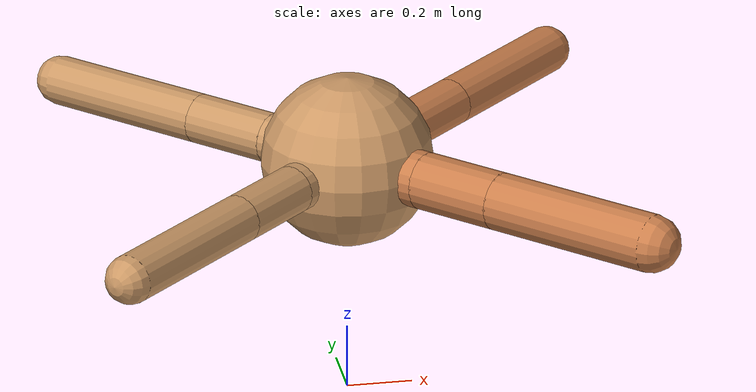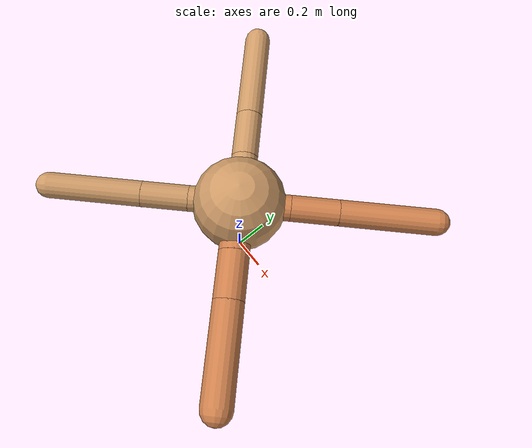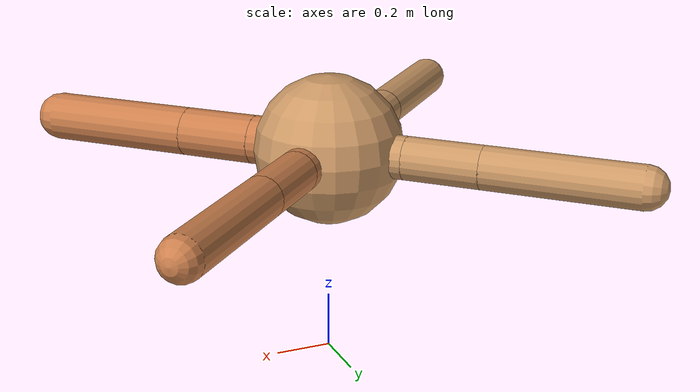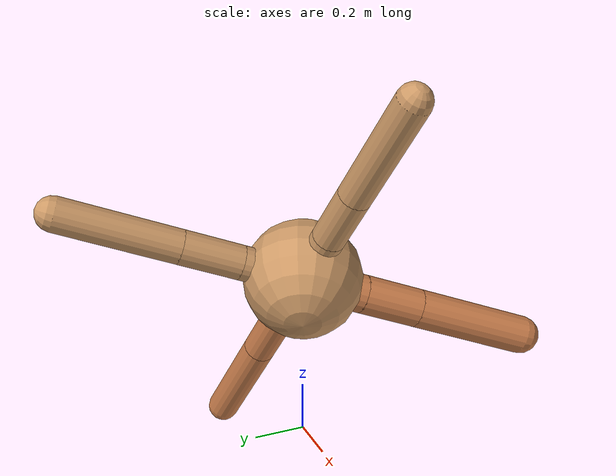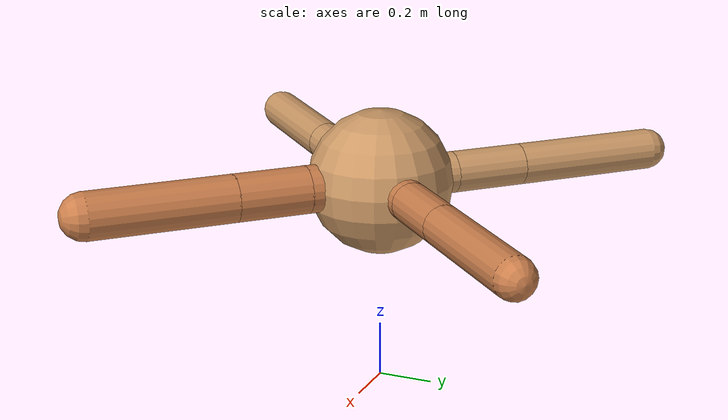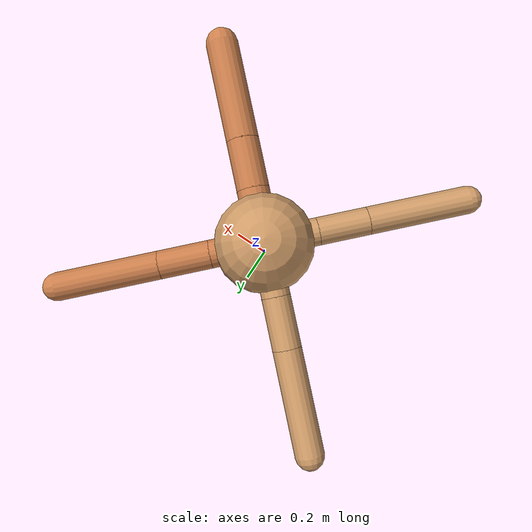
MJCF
<?xml version="1.0" ?>
<mujoco model="ant">

	<compiler angle="degree" coordinate="local" inertiafromgeom="true"/>

	<option integrator="RK4" timestep="0.01"/>

	<custom>

		<numeric data="0.0 0.0 0.55 1.0 0.0 0.0 0.0 0.0 1.0 0.0 -1.0 0.0 -1.0 0.0 1.0" name="init_qpos"/>

	</custom>

	<default>

		<joint armature="1" damping="1" limited="true"/>

		<geom conaffinity="0" condim="3" density="5.0" friction="1.5 0.1 0.1" margin="0.01" rgba="0.8 0.6 0.4 1"/>

	</default>

	<worldbody>

		<body name="torso" pos="0 0 0.75">

			<geom name="torso_geom" pos="0 0 0" size="0.26216115389969336" type="sphere"/>

			<!--joint armature="0" damping="0" limited="false" margin="0.01" name="root" pos="0 0 0" type="free"/-->

			<body name="front_left_leg" pos="0 0 0">

				<geom fromto="0 0 0 0.2 0.2 0" name="aux_1_geom" size="0.07402374305614245" type="capsule" rgba=".8 .5 .3 1"/>

				<body name="aux_1" pos="0.2 0.2 0">

					<joint axis="0 0 1" name="hip_1" pos="0.0 0.0 0.0" range="-40 40" type="hinge"/>

					<geom fromto="0 0 0 0.18797133771822294 0.18797133771822294 0" name="left_leg_geom" size="0.07402374305614245" type="capsule" rgba=".8 .5 .3 1"/>

					<body pos="0.18797133771822294 0.18797133771822294 0" name="front_left_foot">

						<joint axis="-1 1 0" name="ankle_1" pos="0.0 0.0 0.0" range="30 100" type="hinge"/>

						<geom fromto="0 0 0 0.3759426754364459 0.3759426754364459 0" name="left_ankle_geom" size="0.07402374305614245" type="capsule" rgba=".8 .5 .3 1"/>

					</body>

				</body>

			</body>

			<body name="front_right_leg" pos="0 0 0">

				<geom fromto="0 0 0 -0.2 0.2 0" name="aux_2_geom" size="0.07591630091529328" type="capsule"/>

				<body name="aux_2" pos="-0.2 0.2 0">

					<joint axis="0 0 1" name="hip_2" pos="0.0 0.0 0.0" range="-40 40" type="hinge"/>

					<geom fromto="0 0 0 -0.18963957763953607 0.18963957763953607 0" name="right_leg_geom" size="0.07591630091529328" type="capsule"/>

					<body pos="-0.18963957763953607 0.18963957763953607 0" name="front_right_foot">

						<joint axis="1 1 0" name="ankle_2" pos="0.0 0.0 0.0" range="-100 -30" type="hinge"/>

						<geom fromto="0 0 0 -0.37927915527907213 0.37927915527907213 0" name="right_ankle_geom" size="0.07591630091529328" type="capsule"/>

					</body>

				</body>

			</body>

			<body name="left_back_leg" pos="0 0 0">

				<geom fromto="0 0 0 -0.2 -0.2 0" name="aux_3_geom" size="0.07318146167980877" type="capsule"/>

				<body name="aux_3" pos="-0.2 -0.2 0">

					<joint axis="0 0 1" name="hip_3" pos="0.0 0.0 0.0" range="-40 40" type="hinge"/>

					<geom fromto="0 0 0 -0.18611743218774 -0.18611743218774 0" name="back_leg_geom" size="0.07318146167980877" type="capsule"/>

					<body pos="-0.18611743218774 -0.18611743218774 0" name="left_back_foot">

						<joint axis="-1 1 0" name="ankle_3" pos="0.0 0.0 0.0" range="-100 -30" type="hinge"/>

						<geom fromto="0 0 0 -0.37223486437548 -0.37223486437548 0" name="third_ankle_geom" size="0.07318146167980877" type="capsule"/>

					</body>

				</body>

			</body>

			<body name="right_back_leg" pos="0 0 0">

				<geom fromto="0 0 0 0.2 -0.2 0" name="aux_4_geom" size="0.08646908159715576" type="capsule" rgba=".8 .5 .3 1"/>

				<body name="aux_4" pos="0.2 -0.2 0">

					<joint axis="0 0 1" name="hip_4" pos="0.0 0.0 0.0" range="-40 40" type="hinge"/>

					<geom fromto="0 0 0 0.18775174585841603 -0.18775174585841603 0" name="rightback_leg_geom" size="0.08646908159715576" type="capsule" rgba=".8 .5 .3 1"/>

					<body pos="0.18775174585841603 -0.18775174585841603 0" name="right_back_foot">

						<joint axis="1 1 0" name="ankle_4" pos="0.0 0.0 0.0" range="30 100" type="hinge"/>

						<geom fromto="0 0 0 0.37550349171683206 -0.37550349171683206 0" name="fourth_ankle_geom" size="0.08646908159715576" type="capsule" rgba=".8 .5 .3 1"/>

					</body>

				</body>

			</body>

		</body>

	</worldbody>

	<actuator>

		<motor ctrllimited="true" ctrlrange="-1.0 1.0" joint="hip_4" gear="150"/>

		<motor ctrllimited="true" ctrlrange="-1.0 1.0" joint="ankle_4" gear="150"/>

		<motor ctrllimited="true" ctrlrange="-1.0 1.0" joint="hip_1" gear="150"/>

		<motor ctrllimited="true" ctrlrange="-1.0 1.0" joint="ankle_1" gear="150"/>

		<motor ctrllimited="true" ctrlrange="-1.0 1.0" joint="hip_2" gear="150"/>

		<motor ctrllimited="true" ctrlrange="-1.0 1.0" joint="ankle_2" gear="150"/>

		<motor ctrllimited="true" ctrlrange="-1.0 1.0" joint="hip_3" gear="150"/>

		<motor ctrllimited="true" ctrlrange="-1.0 1.0" joint="ankle_3" gear="150"/>

	</actuator>

</mujoco>
